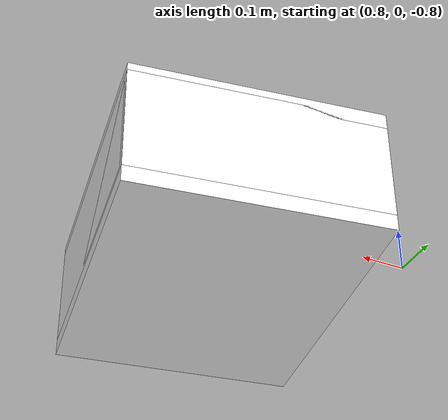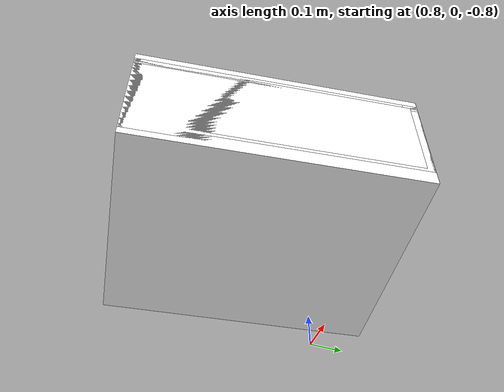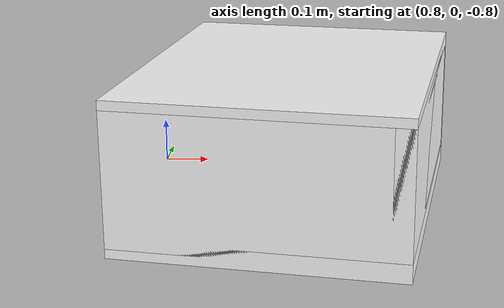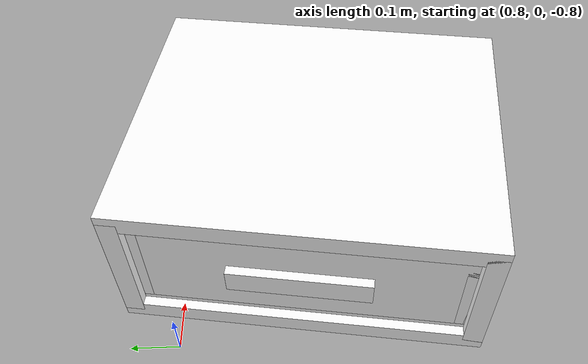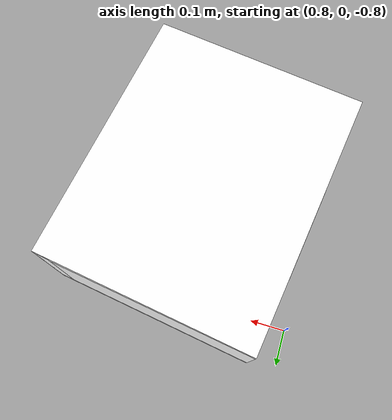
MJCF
<mujoco model="drawer">
        <compiler angle="radian" eulerseq='zxy' />
        <option gravity = "0 0 0" />
        <option>
            <flag contact = "disable"/>
        </option>
        <statistic	extent="1.0" center="0.0 0.0 0.0"/>
        <visual>
            <map fogstart="3" fogend="5" force="0.1" znear=" 0.100000 " zfar=" 12.000000 "/>
        </visual>
        <size njmax="500" nconmax="100" />
        <actuator>
            <velocity joint="drawerJ" name="viva_revolution" kv='10'></velocity>
        </actuator>
        <asset>
            <texture builtin="flat" name="objtex" height="32" width="32" rgb1="1 1 1" type="cube"></texture>
            <texture builtin="flat" name="handletex" height="32" width="32" rgb1="1 1 1" type="cube"></texture>
            <material name="geomObj" shininess="0.03" specular="0.75" texture="objtex"></material>
            <material name="geomHandle" shininess="0.03" specular="0.75" texture="handletex"></material>
        </asset>
        <worldbody>
            <body name="cabinet_bottom" pos= " 1.125600 -0.287904 -0.778345 "  quat= " 0.073321 0.000000 0.000000 0.997308" >
                <inertial pos="0 0 0" mass="1" diaginertia="1 1 1" />
                <geom size= " 0.299311 0.364982 0.019855 "  type="box" material="geomObj" name="b"/>
                <body name="cabinet_left" pos= " 0.000000 -0.345127 0.140177 " >
                    <inertial pos="0 0 0" mass="1" diaginertia="1 1 1" />
                    <geom size= " 0.299311 0.019855 0.140177 "  type="box" material="geomObj" name="c" />
                </body>
                <body name="cabinet_right" pos= " 0.000000 0.345127 0.140177 " >
                    <inertial pos="0 0 0" mass="1" diaginertia="1 1 1" />
                    <geom size= " 0.299311 0.019855 0.140177 "  type="box" material="geomObj" name="d" />
                </body>
                <body name="cabinet_top" pos= " 0.000000 0.000000 0.280354 " >
                    <inertial pos="0 0 0" mass="1" diaginertia="1 1 1" />
                    <geom size= " 0.299311 0.364982 0.019855 "  type="box" material="geomObj" name="e"/>
                </body>
                <body name="cabinet_back" pos= " -0.279456 0.000000 0.140177 "  >
                    <inertial pos="0 0 0" mass="1" diaginertia="1 1 1" />
                    <geom size= " 0.019855 0.364982 0.140177 "  type="box" material="geomObj" name="f" />
                </body>
                <body name="drawer" pos= " 0.000000 0.000000 0.009928 "  >
                    <geom size= " 0.279456 0.345127 0.019855 "  type="box" material="geomObj" name="ddddfadfadsfac" />
                    <joint name="drawerJ" pos="0 0 0" axis="1 0 0" type="slide" limited="true" range= "0  0.4489671438932419 "  />
                    <inertial pos="0 0 0" mass="1" diaginertia="1 1 1" />
                    <body name="drawer_left" pos= " 0.000000 -0.325271 0.140177 " >
                        <inertial pos="0 0 0" mass="1" diaginertia="1 1 1" />
                        <geom size= " 0.279456 0.019855 0.120322 "  type="box" material="geomObj" name="ddc" />
                    </body>
                    <body name="drawer_right" pos= " 0.000000 0.325271 0.140177 " >
                        <inertial pos="0 0 0" mass="1" diaginertia="1 1 1" />
                        <geom size= " 0.279456 0.019855 0.120322 "  type="box" material="geomObj" name="dddd" />
                    </body>
                    <body name="drawer_front" pos= " 0.259601 0.000000 0.140177 " >
                        <inertial pos="0 0 0" mass="1" diaginertia="1 1 1" />
                        <geom size= " 0.019855 0.345127 0.120322 "  type="box" material="geomObj" name="eeeee"/>
                    </body>
                    <body name="drawer_back" pos= " -0.279456 0.000000 0.140177 "  >
                        <inertial pos="0 0 0" mass="1" diaginertia="1 1 1" />
                        <geom size= " 0.019855 0.345127 0.120322 "  type="box" material="geomObj" name="fffff" />
                    </body>
                    <body name="knob" pos= " 0.299311 0.000000 0.140177 " >
                        <inertial pos="0 0 0" mass="0.1" diaginertia="0.1 0.1 0.1" />
                        <geom size= " 0.009105 0.139347 0.026209 "  pos="0 0 0" type="box" material="geomHandle" name="handle"/>
                    </body>
                </body>
            </body>
            <body name="external_camera_body_0" pos="0.0 0 0.00">
                <camera euler="-1.57 1.57 0.0" fovy=" 54.280851 " name="external_camera_0" pos="0.0 0 0"></camera>
                <inertial pos= " 0.00 0.0 0.000000 " mass="1" diaginertia="1 1 1" />
                <joint name="cam_j" pos="0.0 0 0" axis = "1 0 0" type="free" />
            </body>
        </worldbody>
    </mujoco>
